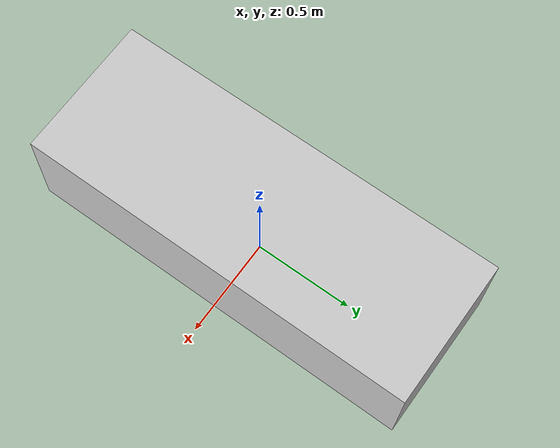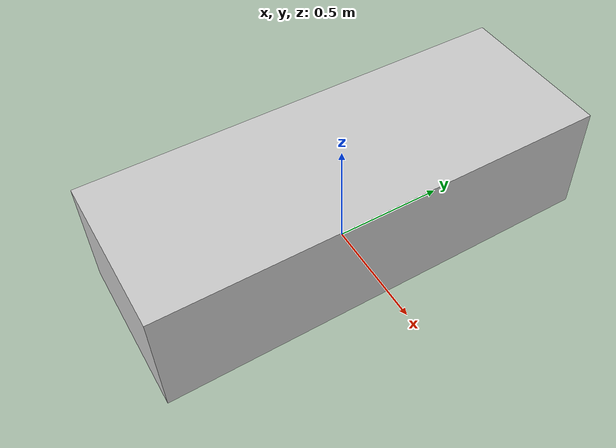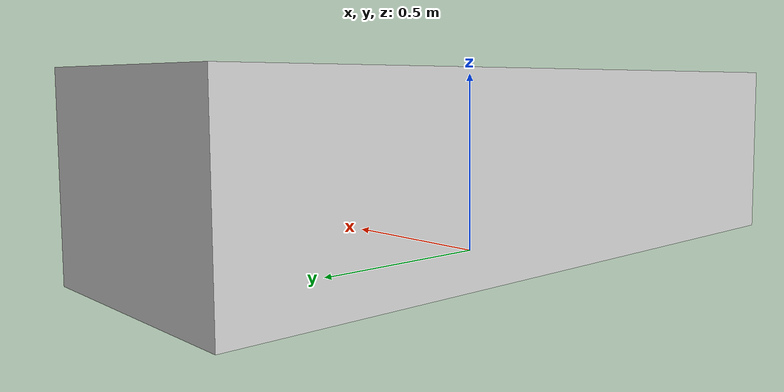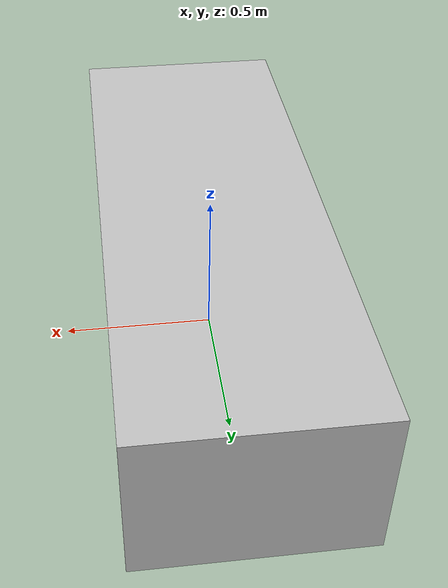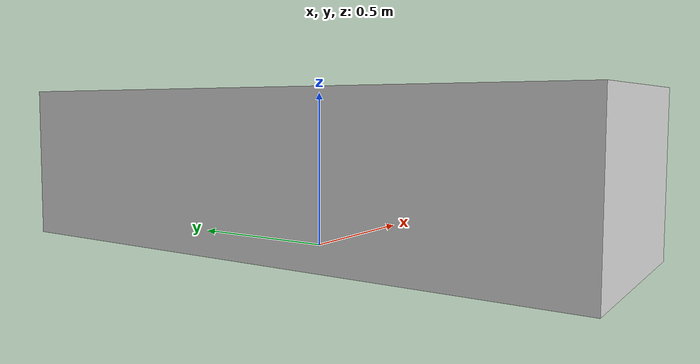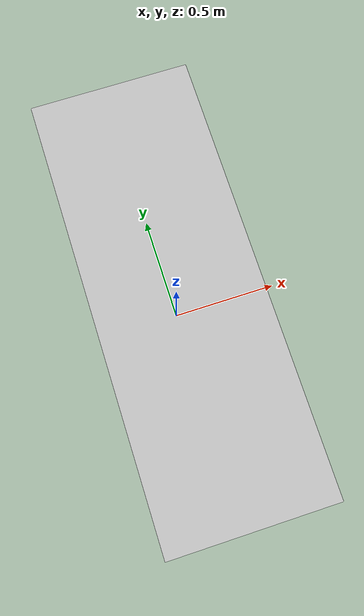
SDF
<?xml version="1.0"?>
<sdf version="1.6">
  <model name="rwc2013/couch">
    <link name="1_link">
      <collision name="1_col">
        <geometry>
          <box>
            <size>0.716 1.966 0.51</size>
          </box>
        </geometry>
      </collision>
      <visual name="1_vis">
        <geometry>
          <box>
            <size>0.716 1.966 0.51</size>
          </box>
        </geometry>
        <material>
          <ambient>0.8 0.8 0.8 1</ambient>
        </material>
      </visual>
      <pose>0.0 0.0 0.255 0 0 0</pose>
    </link>
    <static>true</static>
  </model>
</sdf>
